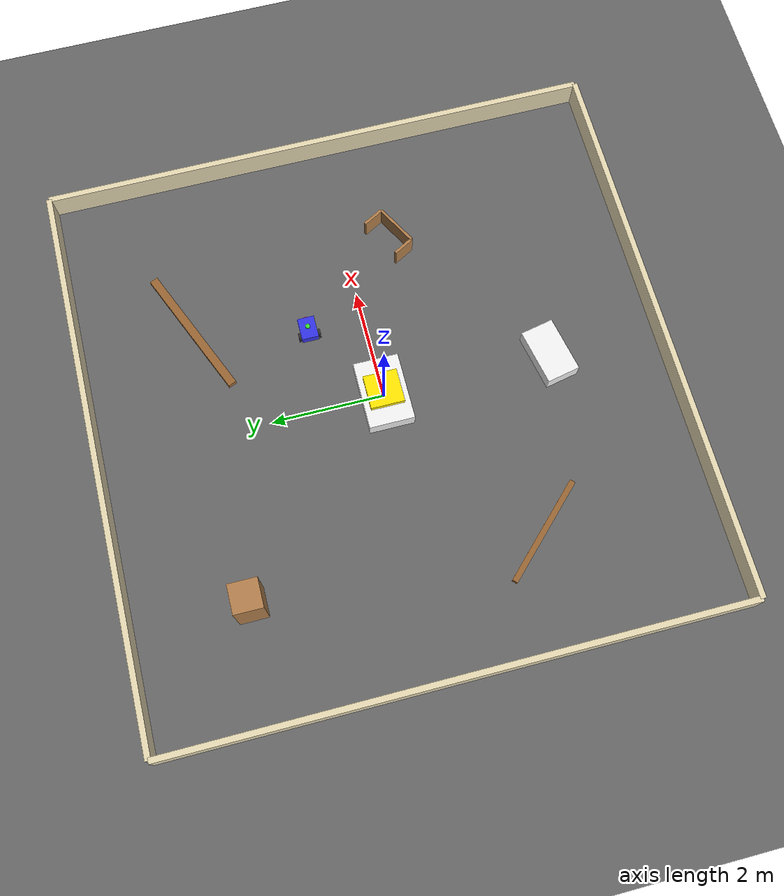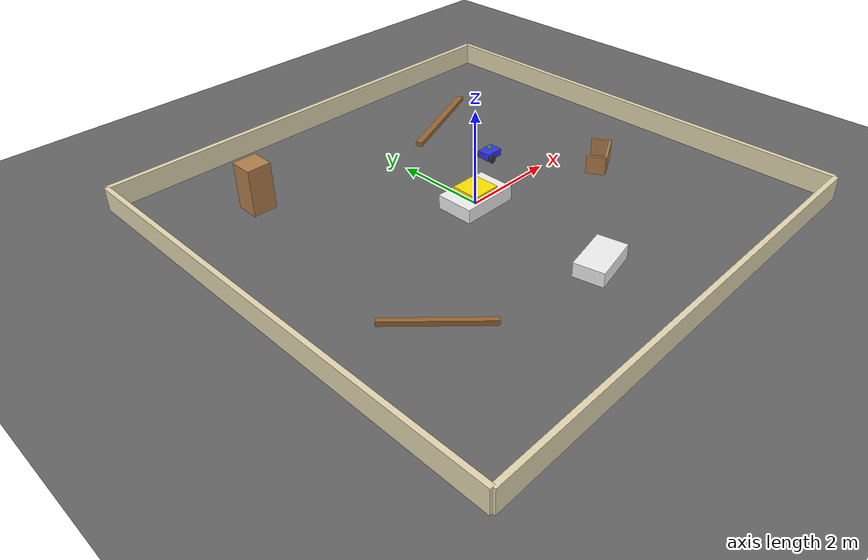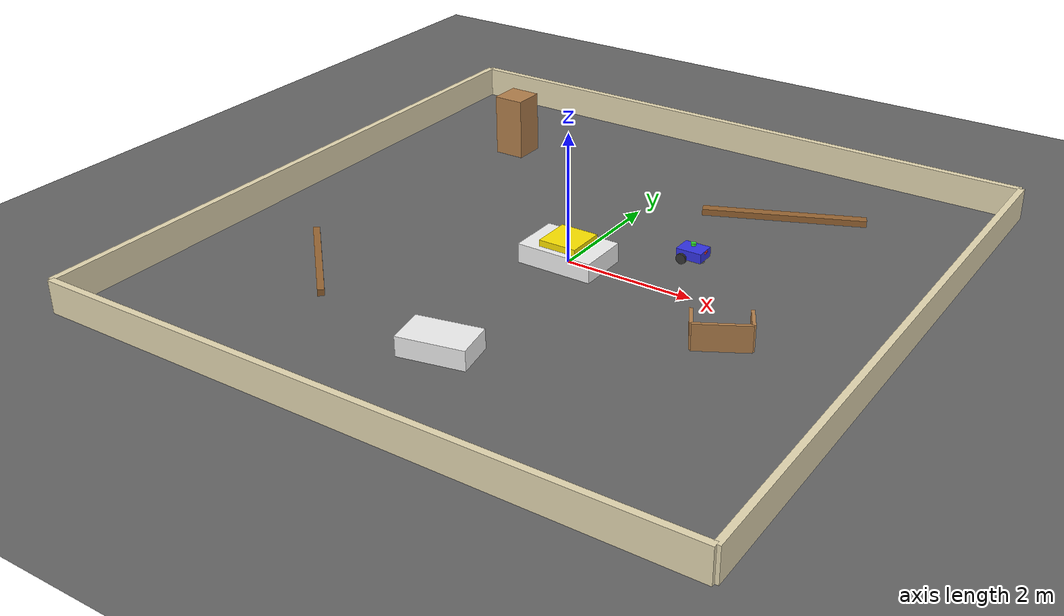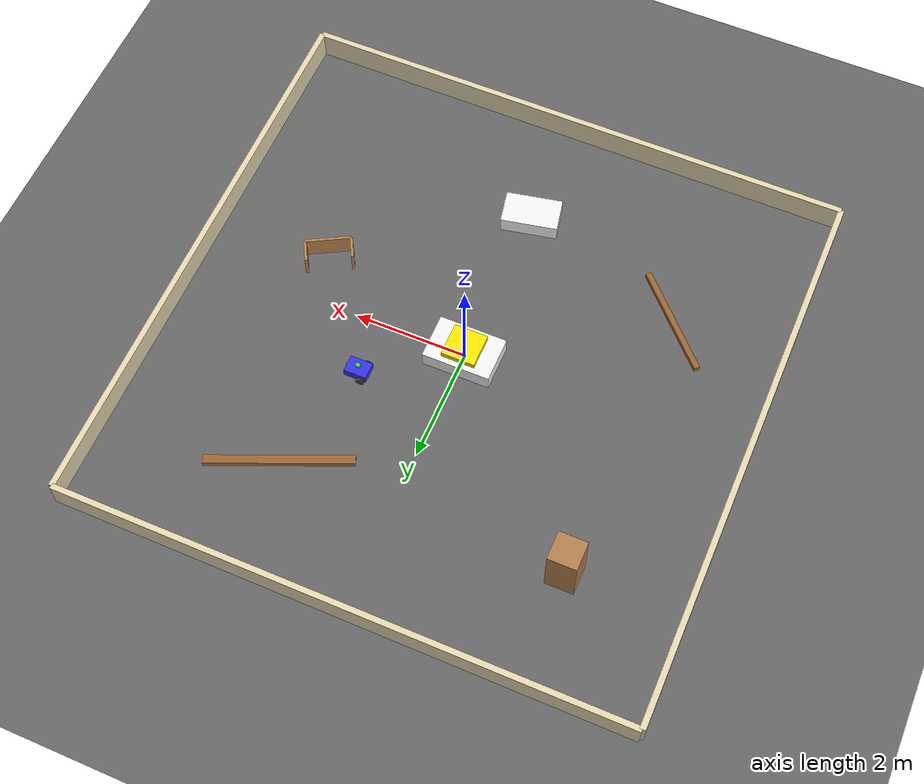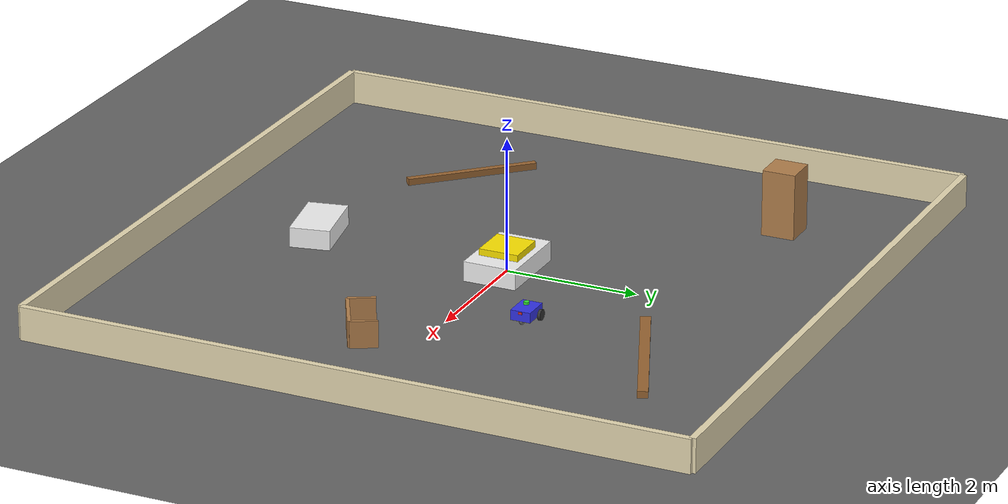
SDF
<?xml version='1.10'?>
<sdf version='1.10'>
  <world name='test_arena_world'>
    <!-- Physics engine configuration -->
    <gravity>0 0 -9.8</gravity>
    <physics type='ode'>
      <max_step_size>0.01</max_step_size>
      <real_time_factor>1</real_time_factor>
      <real_time_update_rate>1000</real_time_update_rate>
    </physics>

    <!-- Core system plugins -->
    <plugin filename="gz-sim-physics-system"
            name="gz::sim::systems::Physics"/>

    <plugin filename="gz-sim-user-commands-system"
            name="gz::sim::systems::UserCommands"/>

    <plugin filename="gz-sim-scene-broadcaster-system"
            name="gz::sim::systems::SceneBroadcaster"/>

    <!-- Contact plugin -->
    <plugin filename="gz-sim-contact-system" name="gz::sim::systems::Contact"/>

    <!--GUI-->
    <gui fullscreen='false'>
      <plugin name='3D View' filename='GzScene3D'>
        <ignition-gui><title>3D View</title></ignition-gui>
        <engine>ogre2</engine>
        <scene>scene</scene>
        <ambient_light>0.5 0.5 0.5</ambient_light>
        <background_color>0.8 0.8 0.8</background_color>
        <camera_pose>8 -8 6 0 0.6 2.3</camera_pose>
      </plugin>
      <plugin name='World control' filename='WorldControl'>
        <ignition-gui><title>World control</title></ignition-gui>
        <play_pause>true</play_pause>
        <step>true</step>
      </plugin>
      <plugin name='Teleop' filename='Teleop'>
        <topic>cmd_vel</topic>
      </plugin>

      <plugin filename="ImageDisplay" name="Camera view">
        <gz-gui>
          <title>Camera Feed</title>
          <property type="string" key="topic">
            image
          </property>
        </gz-gui>
      </plugin>

    </gui>

    <scene>
      <ambient>0.6 0.6 0.6 1</ambient>
      <background>0.7 0.7 0.7 1</background>
      <shadows>true</shadows>
    </scene>

    <!-- 1. gray flat floor -->
    <model name='ground_plane'>
      <static>true</static>
      <link name='link'>
        <collision name='collision'>
          <geometry><plane><normal>0 0 1</normal><size>20 20</size></plane></geometry>
        </collision>
        <visual name='visual'>
          <geometry><plane><normal>0 0 1</normal><size>20 20</size></plane></geometry>
          <material>
            <ambient>0.4 0.4 0.4 1</ambient>
            <diffuse>0.4 0.4 0.4 1</diffuse>
            <specular>0.1 0.1 0.1 1</specular>
          </material>
        </visual>
      </link>
    </model>

    <!-- 2. Rectangular fence around the perimeter -->
    <model name='boundary_fence'>
      <static>true</static>
      <pose>0 0 0.25 0 0 0</pose>
      <link name='wall_front'>
        <pose>5 0 0 0 0 0</pose>
        <collision name='c1'><geometry><box><size>0.1 10 0.5</size></box></geometry></collision>
        <visual name='v1'>
          <geometry><box><size>0.1 10 0.5</size></box></geometry>
          <material><ambient>0.9 0.85 0.7 1</ambient><diffuse>0.9 0.85 0.7 1</diffuse></material>
        </visual>
      </link>
      <link name='wall_back'>
        <pose>-5 0 0 0 0 0</pose>
        <collision name='c2'><geometry><box><size>0.1 10 0.5</size></box></geometry></collision>
        <visual name='v2'>
          <geometry><box><size>0.1 10 0.5</size></box></geometry>
          <material><ambient>0.9 0.85 0.7 1</ambient><diffuse>0.9 0.85 0.7 1</diffuse></material>
        </visual>
      </link>
      <link name='wall_left'>
        <pose>0 5 0 0 0 1.5708</pose>
        <collision name='c3'><geometry><box><size>0.1 10 0.5</size></box></geometry></collision>
        <visual name='v3'>
          <geometry><box><size>0.1 10 0.5</size></box></geometry>
          <material><ambient>0.9 0.85 0.7 1</ambient><diffuse>0.9 0.85 0.7 1</diffuse></material>
        </visual>
      </link>
      <link name='wall_right'>
        <pose>0 -5 0 0 0 1.5708</pose>
        <collision name='c4'><geometry><box><size>0.1 10 0.5</size></box></geometry></collision>
        <visual name='v4'>
          <geometry><box><size>0.1 10 0.5</size></box></geometry>
          <material><ambient>0.9 0.85 0.7 1</ambient><diffuse>0.9 0.85 0.7 1</diffuse></material>
        </visual>
      </link>
    </model>

    <!-- 3. Long strips of wood/cardboard -->
    <model name='wood_strip_1'>
      <pose>2 3 0.05 0 0 0.4</pose>
      <link name='link'>
        <collision name='c'><geometry><box><size>2.5 0.15 0.1</size></box></geometry></collision>
        <visual name='v'>
          <geometry><box><size>2.5 0.15 0.1</size></box></geometry>
          <material><ambient>0.6 0.4 0.2 1</ambient><diffuse>0.6 0.4 0.2 1</diffuse></material>
        </visual>
      </link>
    </model>
    <model name='wood_strip_2'>
      <pose>-3 -2 0.05 0 0 -0.8</pose>
      <link name='link'>
        <collision name='c'><geometry><box><size>2.0 0.1 0.1</size></box></geometry></collision>
        <visual name='v'>
          <geometry><box><size>2.0 0.1 0.1</size></box></geometry>
          <material><ambient>0.6 0.4 0.2 1</ambient><diffuse>0.6 0.4 0.2 1</diffuse></material>
        </visual>
      </link>
    </model>

    <!-- 4. White rectangular foam block -->
    <model name='foam_block_mid'>
      <pose>0 0 0.15 0 0 0</pose>
      <link name='link'>
        <collision name='c'><geometry><box><size>1.2 0.8 0.3</size></box></geometry></collision>
        <visual name='v'>
          <geometry><box><size>1.2 0.8 0.3</size></box></geometry>
          <material><ambient>0.95 0.95 0.95 1</ambient><diffuse>0.95 0.95 0.95 1</diffuse></material>
        </visual>
      </link>
    </model>
    <model name='foam_block_right'>
      <pose>0 -3 0.15 0 0 0.2</pose>
      <link name='link'>
        <collision name='c'><geometry><box><size>1.0 0.6 0.3</size></box></geometry></collision>
        <visual name='v'>
          <geometry><box><size>1.0 0.6 0.3</size></box></geometry>
          <material><ambient>0.95 0.95 0.95 1</ambient><diffuse>0.95 0.95 0.95 1</diffuse></material>
        </visual>
      </link>
    </model>

    <!-- 5. Yellow wedge-shaped foam (placed above the central foam block) -->
    <model name='yellow_wedge'>
      <pose>0 0 0.35 0 0 0</pose> <!-- Inclined angle simulates wedge -->
      <link name='link'>
        <collision name='c'><geometry><box><size>0.6 0.6 0.1</size></box></geometry></collision>
        <visual name='v'>
          <geometry><box><size>0.6 0.6 0.1</size></box></geometry>
          <material><ambient>1 0.9 0 1</ambient><diffuse>1 0.9 0 1</diffuse></material>
        </visual>
      </link>
    </model>

    <!-- 6. A cardboard box standing upright -->
    <model name='standing_box'>
      <pose>-3 3 0.5 0 0 0</pose>
      <link name='link'>
        <collision name='c'><geometry><box><size>0.5 0.5 1.0</size></box></geometry></collision>
        <visual name='v'>
          <geometry><box><size>0.5 0.5 1.0</size></box></geometry>
          <material><ambient>0.7 0.5 0.3 1</ambient><diffuse>0.7 0.5 0.3 1</diffuse></material>
        </visual>
      </link>
    </model>

    <!-- 7. Close-up of U-shaped cardboard baffle -->
    <model name='u_barrier'>
      <pose>3 -1 0.2 0 0 0.5</pose>
      <link name='base'>
        <collision name='c'><geometry><box><size>0.8 0.05 0.4</size></box></geometry></collision>
        <pose>0 0 0 0 0 0</pose>
        <visual name='v'><geometry><box><size>0.8 0.05 0.4</size></box></geometry>
        <material><ambient>0.7 0.5 0.3 1</ambient><diffuse>0.7 0.5 0.3 1</diffuse></material></visual>
      </link>
      <link name='side_l'>
        <collision name='c'><geometry><box><size>0.4 0.05 0.4</size></box></geometry></collision>
        <pose>0.4 0.2 0 0 0 1.57</pose>
        <visual name='v'><geometry><box><size>0.4 0.05 0.4</size></box></geometry>
        <material><ambient>0.7 0.5 0.3 1</ambient><diffuse>0.7 0.5 0.3 1</diffuse></material></visual>
      </link>
      <link name='side_r'>
        <collision name='c'><geometry><box><size>0.4 0.05 0.4</size></box></geometry></collision>
        <pose>-0.4 0.2 0 0 0 1.57</pose>
        <visual name='v'><geometry><box><size>0.4 0.05 0.4</size></box></geometry>
        <material><ambient>0.7 0.5 0.3 1</ambient><diffuse>0.7 0.5 0.3 1</diffuse></material></visual>
      </link>
    </model>

    <!-- Light-->
    <light name='sun' type='directional'>
      <pose>0 0 10 0 0 0</pose>
      <cast_shadows>true</cast_shadows>
      <intensity>1.2</intensity>
      <direction>-0.5 0.1 -0.9</direction>
      <diffuse>1 1 1 1</diffuse>
      <specular>0.5 0.5 0.5 1</specular>
    </light>

    <include>
       <uri>model://robot4.sdf</uri>
       <pose>1.5 1 0.1 0 0 0</pose>
    </include>
  </world>
</sdf>

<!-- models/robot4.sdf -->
<sdf version="1.10">

    <!--   Two-Wheeled Robot        -->
    <model name="two_wheel_robot">

      <pose>0 0 0.1 0 0 0</pose>

        <plugin filename="gz-sim-sensors-system" name="gz::sim::systems::Sensors">
          <render_engine>ogre2</render_engine>
        </plugin>

      <!-- ===== Chassis (body) ===== -->
      <link name="chassis">
        <pose>0 0 0.05 0 0 0</pose>
        <inertial>
          <mass>5.0</mass>
          <inertia>
            <ixx>0.0417</ixx>
            <iyy>0.0667</iyy>
            <izz>0.0917</izz>
            <ixy>0</ixy>
            <ixz>0</ixz>
            <iyz>0</iyz>
          </inertia>
        </inertial>
        <collision name="chassis_collision">
          <geometry>
            <box>
              <size>0.4 0.3 0.15</size>
            </box>
          </geometry>
        </collision>
        <visual name="chassis_visual">
          <geometry>
            <box>
              <size>0.4 0.3 0.15</size>
            </box>
          </geometry>
          <material>
            <ambient>0.1 0.1 0.8 1</ambient>
            <diffuse>0.2 0.2 0.9 1</diffuse>
            <specular>0.5 0.5 0.5 1</specular>
          </material>
        </visual>
      </link>

      <!-- ===== Caster Wheel (front support) ===== -->
      <link name="caster_wheel">
        <pose>0.15 0 -0.05 0 0 0</pose>
        <inertial>
          <mass>0.2</mass>
          <inertia>
            <ixx>0.00008</ixx>
            <iyy>0.00008</iyy>
            <izz>0.00008</izz>
            <ixy>0</ixy>
            <ixz>0</ixz>
            <iyz>0</iyz>
          </inertia>
        </inertial>
        <collision name="caster_collision">
          <geometry>
            <sphere>
              <radius>0.04</radius>
            </sphere>
          </geometry>
          <surface>
            <friction>
              <ode>
                <mu>0.0</mu>
                <mu2>0.0</mu2>
              </ode>
            </friction>
          </surface>
        </collision>
        <visual name="caster_visual">
          <geometry>
            <sphere>
              <radius>0.04</radius>
            </sphere>
          </geometry>
          <material>
            <ambient>0.3 0.3 0.3 1</ambient>
            <diffuse>0.4 0.4 0.4 1</diffuse>
          </material>
        </visual>
      </link>

      <joint name="caster_joint" type="fixed">
        <parent>chassis</parent>
        <child>caster_wheel</child>
      </joint>

      <!-- ===== Left Wheel ===== -->
      <link name="left_wheel">
        <pose>-0.1 0.175 -0.01 -1.5708 0 0</pose>
        <inertial>
          <mass>0.5</mass>
          <inertia>
            <ixx>0.00065</ixx>
            <iyy>0.00065</iyy>
            <izz>0.00113</izz>
            <ixy>0</ixy>
            <ixz>0</ixz>
            <iyz>0</iyz>
          </inertia>
        </inertial>
        <collision name="left_wheel_collision">
          <geometry>
            <cylinder>
              <radius>0.08</radius>
              <length>0.04</length>
            </cylinder>
          </geometry>
          <surface>
            <friction>
              <ode>
                <mu>1.0</mu>
                <mu2>1.0</mu2>
              </ode>
            </friction>
          </surface>
        </collision>
        <visual name="left_wheel_visual">
          <geometry>
            <cylinder>
              <radius>0.08</radius>
              <length>0.04</length>
            </cylinder>
          </geometry>
          <material>
            <ambient>0.1 0.1 0.1 1</ambient>
            <diffuse>0.2 0.2 0.2 1</diffuse>
          </material>
        </visual>
      </link>

      <joint name="left_wheel_joint" type="revolute">
        <parent>chassis</parent>
        <child>left_wheel</child>
        <axis>
          <xyz>0 0 1</xyz>
          <limit>
            <lower>-1.79769e+308</lower>
            <upper>1.79769e+308</upper>
          </limit>
        </axis>
      </joint>

      <!-- ===== Right Wheel ===== -->
      <link name="right_wheel">
        <pose>-0.1 -0.175 -0.01 -1.5708 0 0</pose>
        <inertial>
          <mass>0.5</mass>
          <inertia>
            <ixx>0.00065</ixx>
            <iyy>0.00065</iyy>
            <izz>0.00113</izz>
            <ixy>0</ixy>
            <ixz>0</ixz>
            <iyz>0</iyz>
          </inertia>
        </inertial>
        <collision name="right_wheel_collision">
          <geometry>
            <cylinder>
              <radius>0.08</radius>
              <length>0.04</length>
            </cylinder>
          </geometry>
          <surface>
            <friction>
              <ode>
                <mu>1.0</mu>
                <mu2>1.0</mu2>
              </ode>
            </friction>
          </surface>
        </collision>
        <visual name="right_wheel_visual">
          <geometry>
            <cylinder>
              <radius>0.08</radius>
              <length>0.04</length>
            </cylinder>
          </geometry>
          <material>
            <ambient>0.1 0.1 0.1 1</ambient>
            <diffuse>0.2 0.2 0.2 1</diffuse>
          </material>
        </visual>
      </link>

      <joint name="right_wheel_joint" type="revolute">
        <parent>chassis</parent>
        <child>right_wheel</child>
        <axis>
          <xyz>0 0 1</xyz>
          <limit>
            <lower>-1.79769e+308</lower>
            <upper>1.79769e+308</upper>
          </limit>
        </axis>
      </joint>

      <!-- ===== Camera Link ===== -->
      <link name="camera_link">
        <pose>0.2 0 0.1 0 0 0</pose>
        <inertial>
          <mass>0.1</mass>
          <inertia>
            <ixx>0.00001</ixx>
            <iyy>0.00001</iyy>
            <izz>0.00001</izz>
            <ixy>0</ixy>
            <ixz>0</ixz>
            <iyz>0</iyz>
          </inertia>
        </inertial>
        <visual name="camera_visual">
          <geometry>
            <box>
              <size>0.03 0.06 0.03</size>
            </box>
          </geometry>
          <material>
            <ambient>0.8 0.1 0.1 1</ambient>
            <diffuse>0.9 0.2 0.2 1</diffuse>
          </material>
        </visual>
        <sensor name="camera" type="camera">
          <always_on>true</always_on>
          <update_rate>10</update_rate>
          <visualize>true</visualize>
          <topic>camera_image</topic>
          <camera>
            <horizontal_fov>1.151917</horizontal_fov>
            <image>
              <width>1080</width>
              <height>720</height>
              <format>R8G8B8</format>
            </image>
            <clip>
              <near>0.02</near>
              <far>300</far>
            </clip>
          </camera>
        </sensor>
      </link>

      <joint name="camera_joint" type="fixed">
        <parent>chassis</parent>
        <child>camera_link</child>
      </joint>

      <!-- ===== Lidar Link ===== -->
      <link name="lidar_link">
        <pose>0 0 0.18 0 0 0</pose>
        <inertial>
          <mass>0.2</mass>
          <inertia>
            <ixx>0.00005</ixx>
            <iyy>0.00005</iyy>
            <izz>0.00005</izz>
            <ixy>0</ixy>
            <ixz>0</ixz>
            <iyz>0</iyz>
          </inertia>
        </inertial>
        <visual name="lidar_visual">
          <geometry>
            <cylinder>
              <radius>0.04</radius>
              <length>0.04</length>
            </cylinder>
          </geometry>
          <material>
            <ambient>0.1 0.8 0.1 1</ambient>
            <diffuse>0.2 0.9 0.2 1</diffuse>
          </material>
        </visual>
        <sensor name="lidar" type="gpu_lidar">
          <always_on>true</always_on>
          <update_rate>30</update_rate>
          <visualize>true</visualize>
          <topic>scan_gpu</topic>
          <lidar>
            <scan>
              <horizontal>
                <samples>360</samples>
                <resolution>1</resolution>
                <min_angle>-3.14159</min_angle>
                <max_angle>3.14159</max_angle>
              </horizontal>
              <vertical>
                <samples>1</samples>
                <resolution>1</resolution>
                <min_angle>0</min_angle>
                <max_angle>0</max_angle>
              </vertical>
            </scan>
            <range>
              <min>0.5</min>
              <max>12.0</max>
              <resolution>0.01</resolution>
            </range>
            <noise>
              <type>gaussian</type>
              <mean>0</mean>
              <stddev>0.01</stddev>
            </noise>
          </lidar>
        </sensor>
      </link>

      <joint name="lidar_joint" type="fixed">
        <parent>chassis</parent>
        <child>lidar_link</child>
      </joint>

      <!-- ===== Differential Drive Plugin ===== -->
      <plugin filename="gz-sim-diff-drive-system" name="gz::sim::systems::DiffDrive">
        <left_joint>left_wheel_joint</left_joint>
        <right_joint>right_wheel_joint</right_joint>
        <wheel_separation>0.35</wheel_separation>
        <wheel_radius>0.08</wheel_radius>
        <odom_publish_frequency>50</odom_publish_frequency>
        <topic>cmd_vel</topic>
        <odom_topic>odom</odom_topic>
        <tf_topic>tf</tf_topic>
        <frame_id>odom</frame_id>
        <child_frame_id>chassis</child_frame_id>
        <max_linear_acceleration>1.0</max_linear_acceleration>
        <min_linear_acceleration>-1.0</min_linear_acceleration>
        <max_angular_acceleration>2.0</max_angular_acceleration>
        <min_angular_acceleration>-2.0</min_angular_acceleration>
      </plugin>

      <!-- Joint State Publisher -->
      <plugin filename="gz-sim-joint-state-publisher-system" name="gz::sim::systems::JointStatePublisher"/>

    </model>

</sdf>
